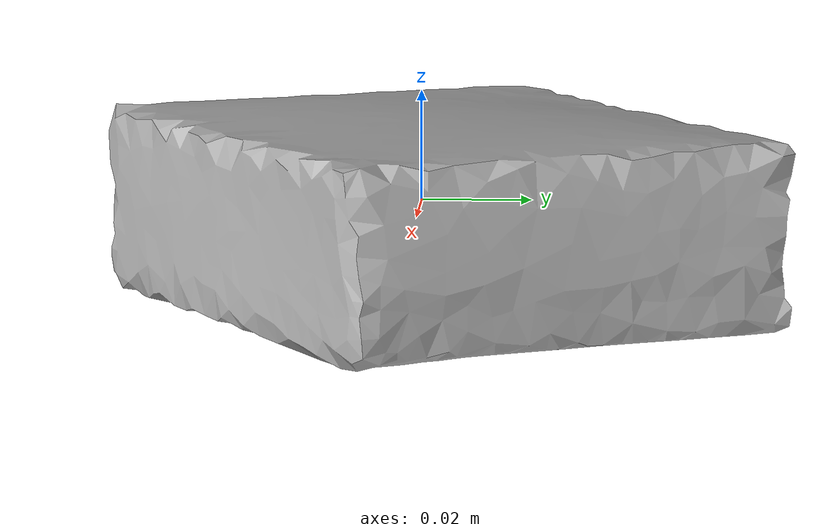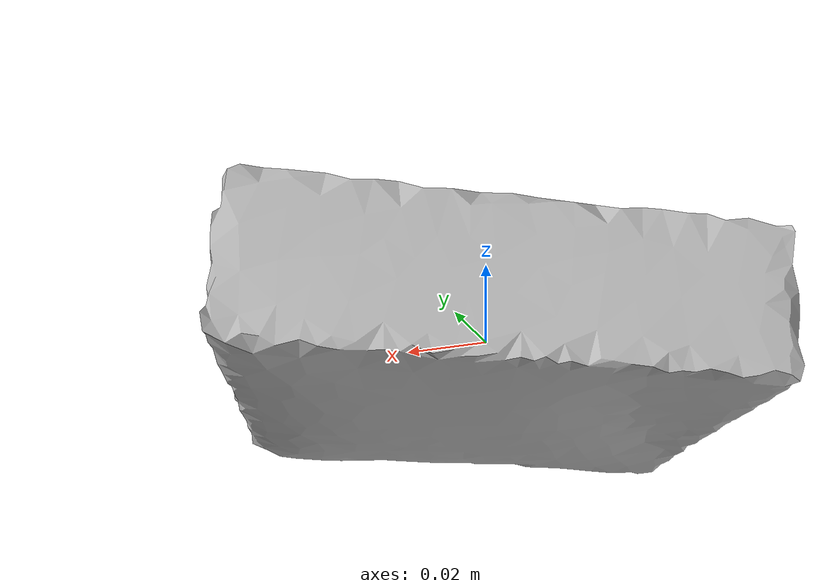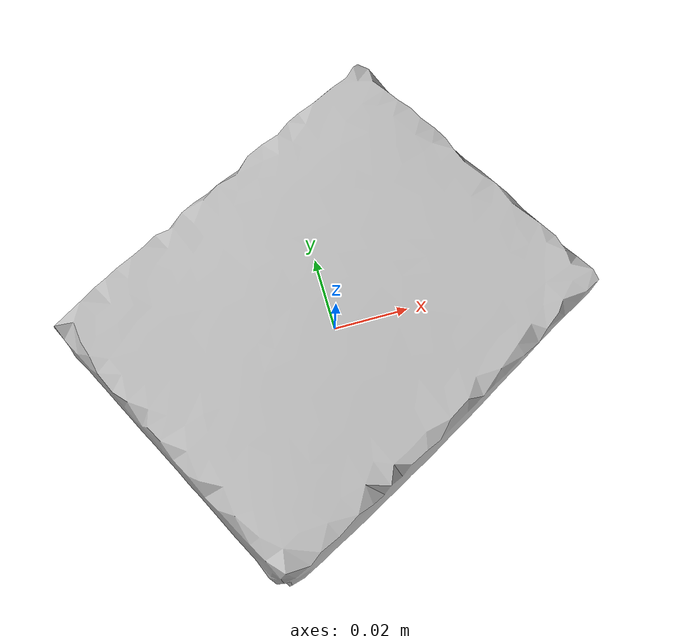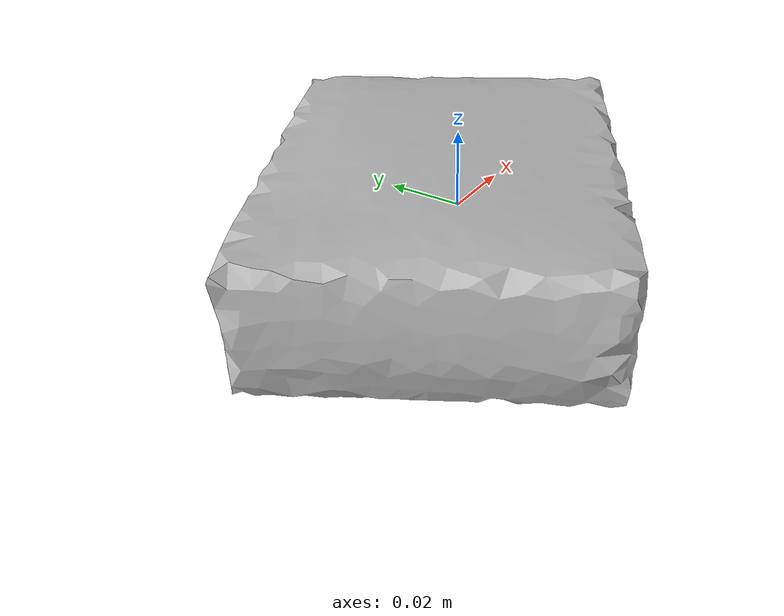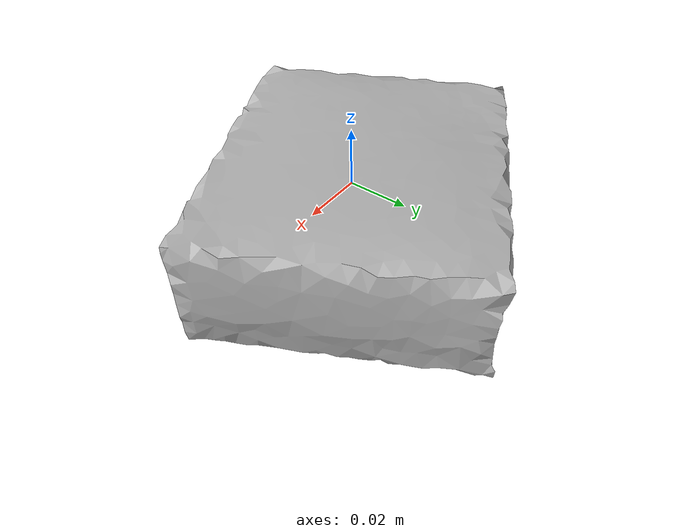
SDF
<?xml version="1.0" ?>
<sdf version="1.7">
    <model name="008_pudding_box">
        <link name="008_pudding_box_link">
            <inertial>
                <pose>-0.000283 0.003493 -0.003346 0.0 0.0 0.0</pose>
                <mass>1.0</mass>
                <inertia>0.0 0.0 0.0 0.0 0.0 0.0</inertia>
            </inertial>
            <collision name="008_pudding_box_collision">
                <surface>
                    <friction>
                        <ode>
                            <mu>1</mu>
                            <mu2>1</mu2>
                        </ode>
                    </friction>
                </surface>
                <max_contact>1</max_contact>
                <geometry>
                    <mesh>
                        <uri>model://008_pudding_box/textured.obj</uri>
                    </mesh>
                </geometry>
            </collision>
            <visual name="008_pudding_box_visual">
                <geometry>
                    <mesh>
                        <uri>model://008_pudding_box/textured.obj</uri>
                    </mesh>
                </geometry>
            </visual>
        </link>

        <joint name="world_to_base_link" type="fixed">
            <parent>world</parent>
            <child>008_pudding_box_link</child>
        </joint>
    </model>
</sdf>
